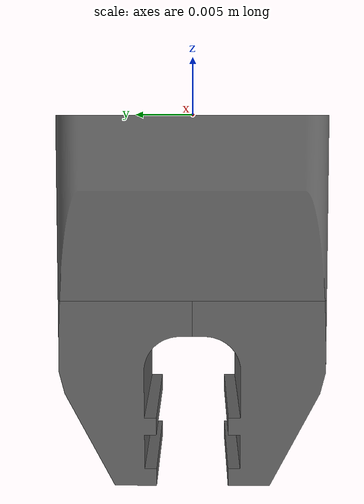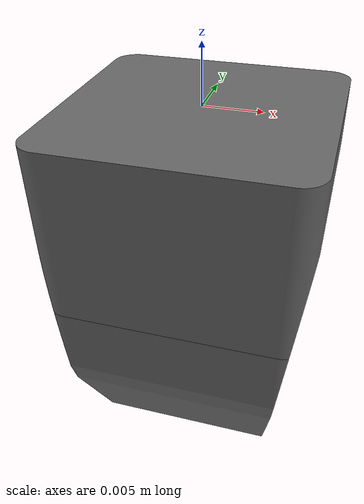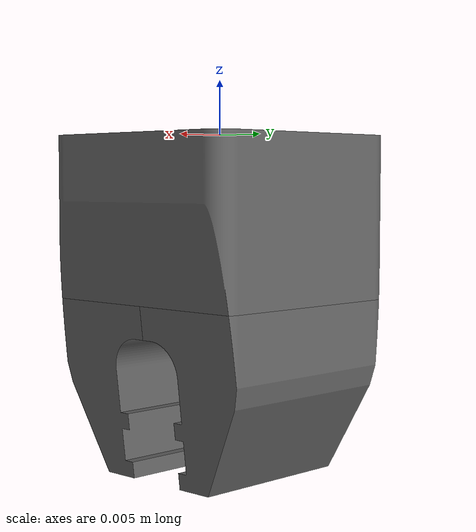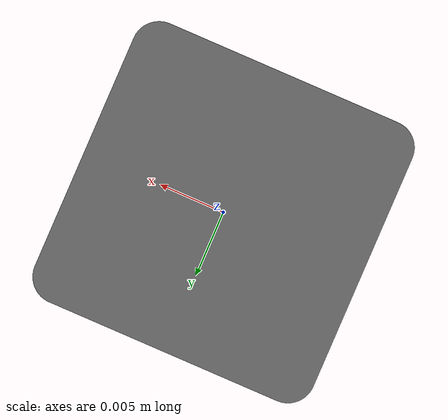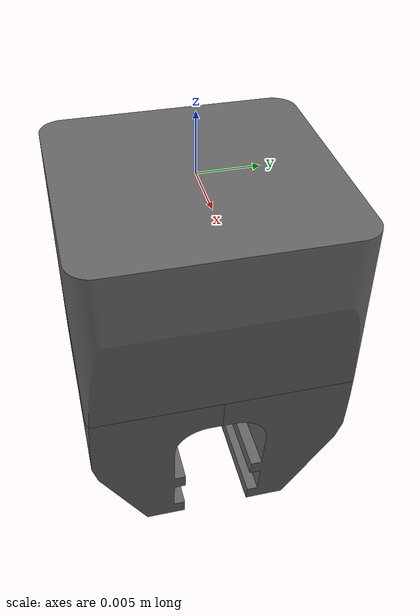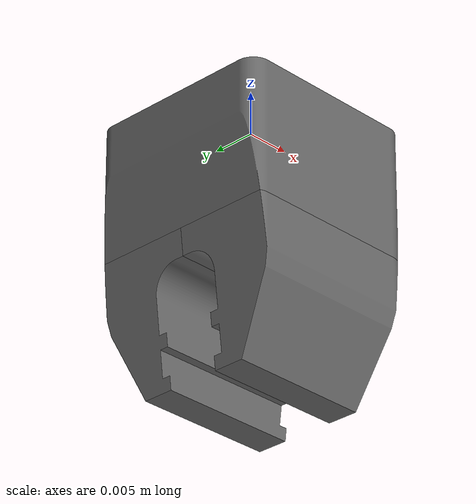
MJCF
<?xml version="1.0" ?>
<!-- Generated using onshape-to-robot -->
<!-- Onshape document_id: 3a4a429737033a1864619f9a / workspace_id: 420cbea4b9fb646664a27e4f -->
<mujoco model="gripper">
  <compiler angle="radian" meshdir="assets" autolimits="true"/>
  <default>
    <default class="gripper">
      <joint frictionloss="0.1" armature="0.005"/>
      <position kp="50" dampratio="1"/>
      <default class="visual">
        <geom type="mesh" contype="0" conaffinity="0" group="2"/>
      </default>
      <default class="collision">
        <geom group="3"/>
      </default>
    </default>
  </default>
  <worldbody>
    <!-- Link base -->
    <body name="base" pos="0 0 0" quat="1 0 0 0" childclass="gripper">
      <freejoint name="base_freejoint"/>
      <inertial pos="3.61549e-08 -7.97298e-09 -0.00737362" mass="0.009468" fullinertia="5.5437e-07 5.33472e-07 7.36418e-07 -6.83552e-12 3.6342e-13 -8.63671e-15"/>
      <!-- Part base -->
      <geom type="mesh" class="visual" pos="-5.16379e-20 -3.44252e-21 0" quat="0.5 0.5 0.5 0.5" mesh="base" material="base_material"/>
      <geom type="mesh" class="collision" pos="-5.16379e-20 -3.44252e-21 0" quat="0.5 0.5 0.5 0.5" mesh="base" material="base_material"/>
      <!-- Link f0 -->
      <body name="f0" pos="-5.16379e-20 -0.0055 -0.015" quat="0.5 0.5 0.5 0.5">
        <!-- Joint from base to f0 -->
        <joint axis="0 0 1" name="rev_f0" type="hinge" range="-0.3909537524467298 0.2007128639793479"/>
        <inertial pos="-0.000822898 -0.00614991 -5.03895e-11" mass="0.00267932" fullinertia="1.27461e-07 9.2376e-08 6.87846e-08 -1.03301e-09 2.12026e-15 -4.84976e-15"/>
        <!-- Part f0 -->
        <geom type="mesh" class="visual" pos="0.0055 0.015 0" quat="1 0 0 0" mesh="f0" material="f0_material"/>
        <geom type="mesh" class="collision" pos="0.0055 0.015 0" quat="1 0 0 0" mesh="f0" material="f0_material"/>
        <!-- Link ft0 -->
        <body name="ft0" pos="0.0025 -0.01525 0" quat="1 0 0 0">
          <!-- Joint from f0 to ft0 -->
          <!-- Joint is "fixed", skipping it -->
          <inertial pos="0 0 0" mass="1e-09" fullinertia="1e-09 1e-09 1e-09 0 0 0"/>
        </body>
      </body>
      <!-- Link f1 -->
      <body name="f1" pos="-5.16379e-20 0.0055 -0.015" quat="0.5 0.5 0.5 0.5">
        <!-- Joint from base to f1 -->
        <joint axis="0 0 1" name="rev_f1" type="hinge" range="-0.2007128639793479 0.3909537524467298"/>
        <inertial pos="0.000822895 -0.00614991 5.03895e-11" mass="0.00267932" fullinertia="1.27461e-07 9.23761e-08 6.87847e-08 1.03304e-09 2.12026e-15 4.84976e-15"/>
        <!-- Part f1 -->
        <geom type="mesh" class="visual" pos="-0.0055 0.015 0" quat="1 0 0 0" mesh="f1" material="f1_material"/>
        <geom type="mesh" class="collision" pos="-0.0055 0.015 0" quat="1 0 0 0" mesh="f1" material="f1_material"/>
        <!-- Link ft1 -->
        <body name="ft1" pos="-0.0025 -0.01525 5.16379e-20" quat="1 0 0 0">
          <!-- Joint from f1 to ft1 -->
          <!-- Joint is "fixed", skipping it -->
          <inertial pos="0 0 0" mass="1e-09" fullinertia="1e-09 1e-09 1e-09 0 0 0"/>
        </body>
      </body>
    </body>
  </worldbody>
  <asset>
    <mesh file="f1.stl"/>
    <mesh file="f0.stl"/>
    <mesh file="base.stl"/>
    <material name="base_material" rgba="0.4 0.4 0.4 1"/>
    <material name="f0_material" rgba="0.4 0.4 0.4 1"/>
    <material name="f1_material" rgba="0.4 0.4 0.4 1"/>
  </asset>
  <actuator>
    <position class="gripper" name="rev_f0" joint="rev_f0" inheritrange="1"/>
    <position class="gripper" name="rev_f1" joint="rev_f1" inheritrange="1"/>
  </actuator>
  <equality/>
</mujoco>
